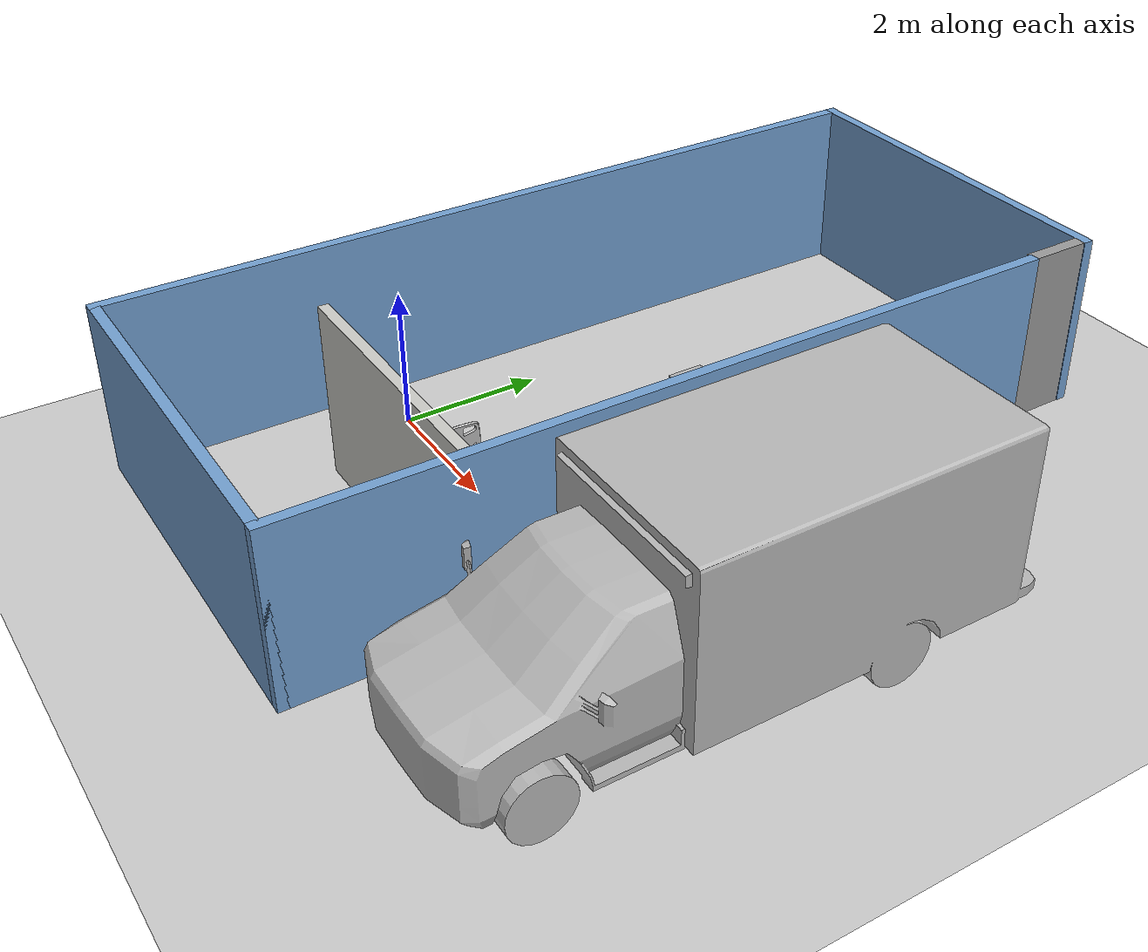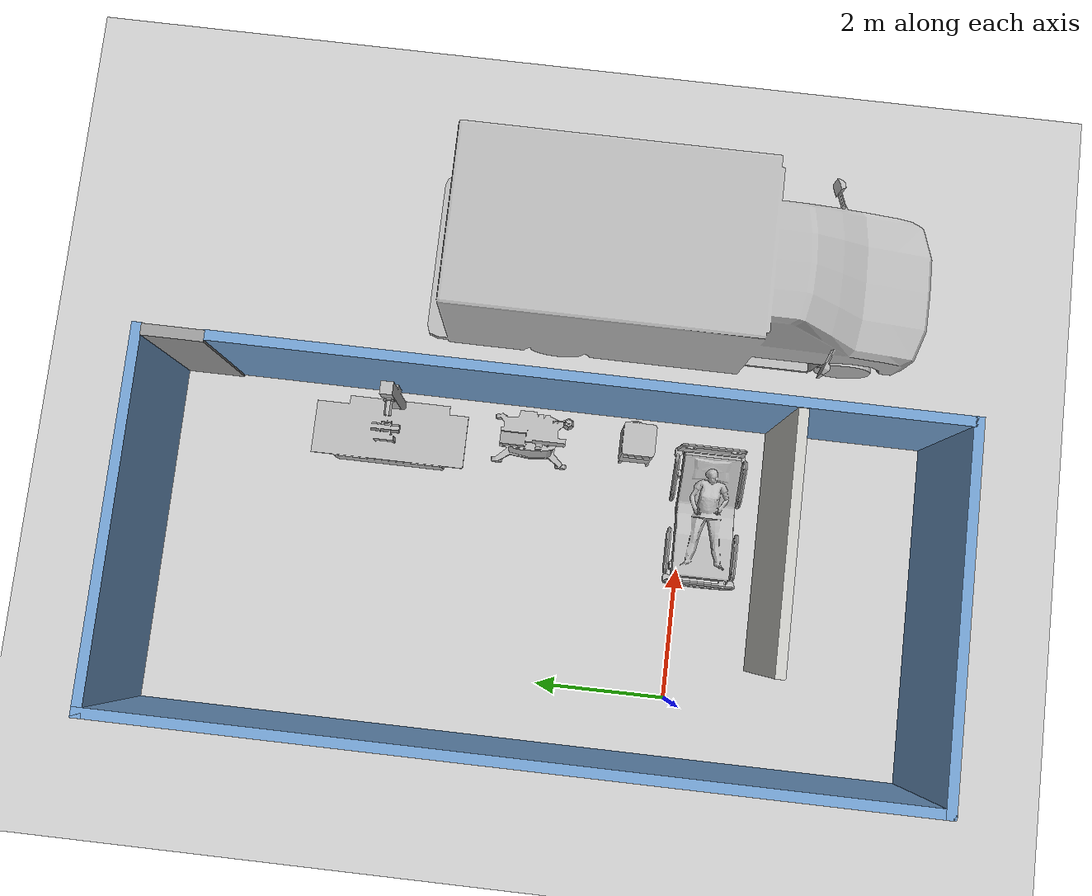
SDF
<sdf version="1.7">
 <world name="default">
  <light name="sun" type="directional">
   <pose>0 0 10 0 -0 0</pose>
   <diffuse>0.8 0.8 0.8 1</diffuse>
   <specular>0.2 0.2 0.2 1</specular>
   <attenuation>
    <range>1000</range>
    <constant>0.9</constant>
    <linear>0.01</linear>
    <quadratic>0.001</quadratic>
   </attenuation>
   <direction>-0.5 0.1 -0.9</direction>
   <spot><inner_angle>0</inner_angle><outer_angle>0</outer_angle><falloff>0</falloff></spot>
  </light>
  <model name="ground_plane">
   <static>1</static>
   <link name="link">
    <collision name="collision">
     <geometry><plane><normal>0 0 1</normal><size>100 100</size></plane></geometry>
     <surface><friction><ode><mu>100</mu><mu2>50</mu2></ode></friction></surface>
    </collision>
    <visual name="visual">
     <cast_shadows>0</cast_shadows>
     <geometry><plane><normal>0 0 1</normal><size>100 100</size></plane></geometry>
     <material>
      <script><uri>file://media/materials/scripts/gazebo.material</uri><name>Gazebo/Grey</name></script>
     </material>
    </visual>
   </link>
  </model>
  <gravity>0 0 -9.8</gravity>
  <magnetic_field>6e-06 2.3e-05 -4.2e-05</magnetic_field>
  <atmosphere type="adiabatic"/>
  <physics type="ode">
   <max_step_size>0.001</max_step_size>
   <real_time_factor>1</real_time_factor>
   <real_time_update_rate>1000</real_time_update_rate>
  </physics>
  <scene><ambient>0.4 0.4 0.4 1</ambient><background>0.7 0.7 0.7 1</background><shadows>1</shadows></scene>
  <spherical_coordinates>
   <surface_model>EARTH_WGS84</surface_model>
   <latitude_deg>0</latitude_deg>
   <longitude_deg>0</longitude_deg>
   <elevation>0</elevation>
   <heading_deg>0</heading_deg>
  </spherical_coordinates>
  <model name="simple_hospital">
   <pose>3.18891 2.2117 0 0 0 -1.57</pose>
   <link name="Door_0">
    <collision name="Door_0_Collision">
     <geometry><box><size>0.9 0.17 2.5</size></box></geometry>
     <pose>0 0 1.25 0 -0 0</pose>
    </collision>
    <visual name="Door_0_Visual">
     <pose>0 0 1.25 0 -0 0</pose>
     <geometry><box><size>0.9 0.17 2.5</size></box></geometry>
     <material>
      <script><uri>file://media/materials/scripts/gazebo.material</uri><name>Gazebo/Grey</name></script>
     </material>
    </visual>
    <pose>-5.41005 1.17768 0 0 -0 0</pose>
   </link>
   <link name="Wall_0">
    <collision name="Wall_0_Collision">
     <geometry><box><size>5.5 0.15 2.5</size></box></geometry>
     <pose>0 0 1.25 0 -0 0</pose>
    </collision>
    <visual name="Wall_0_Visual">
     <pose>0 0 1.25 0 -0 0</pose>
     <geometry><box><size>5.5 0.15 2.5</size></box></geometry>
     <material>
      <script><uri>file://media/materials/scripts/gazebo.material</uri><name>Gazebo/Grey</name></script>
      <ambient>0.447059 0.623529 0.811765 1</ambient>
     </material>
     <meta><layer>0</layer></meta>
    </visual>
    <pose>-5.925 -1.4775 0 0 -0 -1.5708</pose>
   </link>
   <link name="Wall_1">
    <collision name="Wall_1_Collision">
     <geometry><box><size>12 0.15 2.5</size></box></geometry>
     <pose>0 0 1.25 0 -0 0</pose>
    </collision>
    <visual name="Wall_1_Visual">
     <pose>0 0 1.25 0 -0 0</pose>
     <geometry><box><size>12 0.15 2.5</size></box></geometry>
     <material>
      <script><uri>file://media/materials/scripts/gazebo.material</uri><name>Gazebo/Grey</name></script>
      <ambient>0.447059 0.623529 0.811765 1</ambient>
     </material>
     <meta><layer>0</layer></meta>
    </visual>
    <pose>-0 -4.1525 0 0 -0 0</pose>
   </link>
   <link name="Wall_2">
    <collision name="Wall_2_Collision">
     <geometry><box><size>5.5 0.15 2.5</size></box></geometry>
     <pose>0 0 1.25 0 -0 0</pose>
    </collision>
    <visual name="Wall_2_Visual">
     <pose>0 0 1.25 0 -0 0</pose>
     <geometry><box><size>5.5 0.15 2.5</size></box></geometry>
     <material>
      <script><uri>file://media/materials/scripts/gazebo.material</uri><name>Gazebo/Grey</name></script>
      <ambient>0.447059 0.623529 0.811765 1</ambient>
     </material>
     <meta><layer>0</layer></meta>
    </visual>
    <pose>5.925 -1.4775 0 0 -0 1.5708</pose>
   </link>
   <link name="Wall_4">
    <collision name="Wall_4_Collision">
     <geometry><box><size>11 0.15 2.5</size></box></geometry>
     <pose>0 0 1.25 0 -0 0</pose>
    </collision>
    <visual name="Wall_4_Visual">
     <pose>0 0 1.25 0 -0 0</pose>
     <geometry><box><size>11 0.15 2.5</size></box></geometry>
     <material>
      <script><uri>file://media/materials/scripts/gazebo.material</uri><name>Gazebo/Grey</name></script>
      <ambient>0.447059 0.623529 0.811765 1</ambient>
     </material>
     <meta><layer>0</layer></meta>
    </visual>
    <pose>0.5 1.1975 0 0 -0 0</pose>
   </link>
   <link name="Wall_7">
    <collision name="Wall_7_Collision">
     <geometry><box><size>3.75 0.15 2.5</size></box></geometry>
     <pose>0 0 1.25 0 -0 0</pose>
    </collision>
    <visual name="Wall_7_Visual">
     <pose>0 0 1.25 0 -0 0</pose>
     <geometry><box><size>3.75 0.15 2.5</size></box></geometry>
     <material>
      <script><uri>file://media/materials/scripts/gazebo.material</uri><name>Gazebo/CeilingTiled</name></script>
      <ambient>1 1 1 1</ambient>
     </material>
     <meta><layer>0</layer></meta>
    </visual>
    <pose>3.48707 -0.7592 0 0 -0 -1.5708</pose>
   </link>
   <static>1</static>
  </model>
  <model name="ElderLadyPatient">
   <link name="body">
    <visual name="visual">
     <geometry><mesh><uri>model://ElderLadyPatient/meshes/ElderFemale.obj</uri></mesh></geometry>
    </visual>
    <collision name="collision">
     <geometry><mesh><uri>model://ElderLadyPatient/meshes/ElderFemale.obj</uri></mesh></geometry>
    </collision>
    <inertial>
     <inertia><ixx>1</ixx><ixy>0</ixy><ixz>0</ixz><iyy>1</iyy><iyz>0</iyz><izz>1</izz></inertia>
     <mass>1</mass>
    </inertial>
   </link>
   <pose>2.89455 -0.30755 0.001656 -3e-06 4e-06 -3.14119</pose>
  </model>
  <model name="AnesthesiaMachine">
   <static>1</static>
   <link name="body">
    <visual name="visual">
     <geometry><mesh><uri>model://AnesthesiaMachine/meshes/AnesthesiaMachine.obj</uri></mesh></geometry>
    </visual>
    <collision name="collision">
     <geometry><mesh><uri>model://AnesthesiaMachine/meshes/AnesthesiaMachine_Col.obj</uri></mesh></geometry>
    </collision>
   </link>
   <pose>3.74214 2.49162 0 0 -0 1.57</pose>
  </model>
  <model name="XRayMachine">
   <static>1</static>
   <link name="body">
    <visual name="visual">
     <geometry><mesh><uri>model://XRayMachine/meshes/XRayMachine.obj</uri></mesh></geometry>
    </visual>
    <collision name="collision">
     <geometry><mesh><uri>model://XRayMachine/meshes/XRayMachine_Col.obj</uri></mesh></geometry>
    </collision>
   </link>
   <pose>3.35559 4.63785 0 0 0 -1.57</pose>
  </model>
  <model name="BedsideTable_0">
   <link name="body">
    <pose>0 0 0 0 0 -1.5708</pose>
    <visual name="visual">
     <geometry><mesh><uri>model://BedsideTable/meshes/BedsideTable.obj</uri></mesh></geometry>
    </visual>
    <collision name="collision">
     <geometry><mesh><uri>model://BedsideTable/meshes/BedsideTable_Col.obj</uri></mesh></geometry>
    </collision>
    <inertial>
     <inertia><ixx>1</ixx><ixy>0</ixy><ixz>0</ixz><iyy>1</iyy><iyz>0</iyz><izz>1</izz></inertia>
     <mass>1</mass>
    </inertial>
   </link>
   <pose>3.85194 0.844101 0.00018 -1e-06 0 0</pose>
  </model>
  <model name="ambulance">
   <static>1</static>
   <link name="link">
    <collision name="collision">
     <geometry>
      <mesh><scale>0.0254 0.0254 0.0254</scale><uri>model://ambulance/meshes/ambulance.obj</uri></mesh>
     </geometry>
    </collision>
    <visual name="visual">
     <geometry>
      <mesh><scale>0.0254 0.0254 0.0254</scale><uri>model://ambulance/meshes/ambulance.obj</uri></mesh>
     </geometry>
    </visual>
   </link>
   <pose>6.44868 0.613769 0 0 -0 0</pose>
  </model>
 </world>
</sdf>
